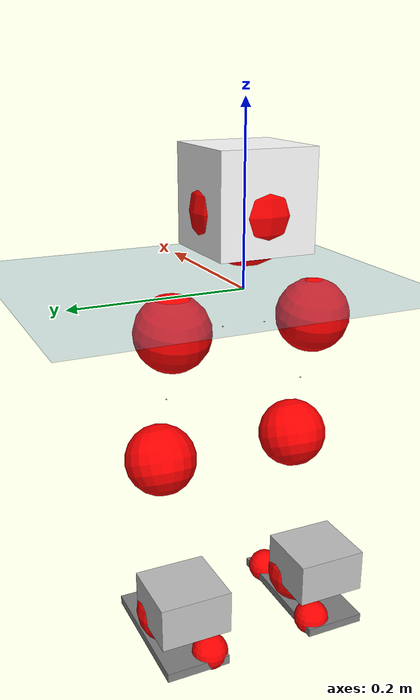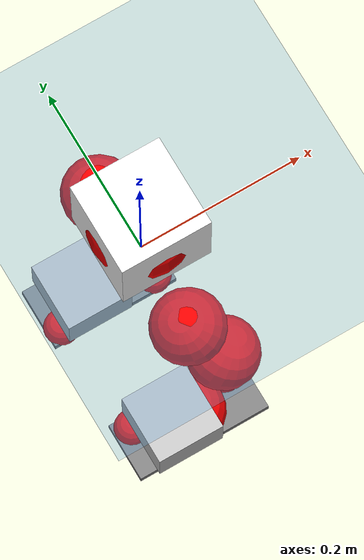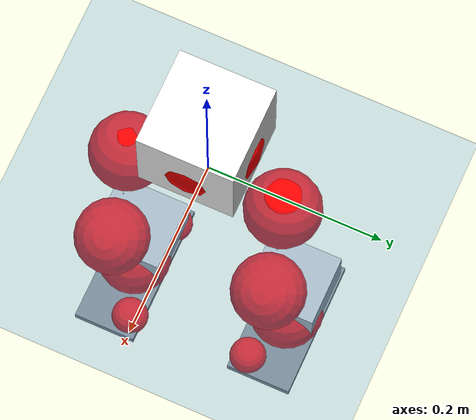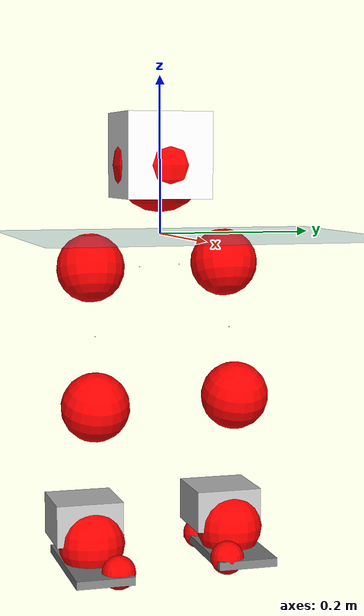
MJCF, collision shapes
<mujoco model="pi_12dof_release_v1">
  <compiler angle="radian" assetdir="assets" balanceinertia="true" inertiafromgeom="false"/>

  <option timestep="0.005" density="1.2" viscosity="2e-05"/>

  <size nkey="1"/>

  <visual>
    <quality shadowsize="8192"/>
    <map shadowclip="0.5"/>
  </visual>

  <default>
    <default class="/">
      <joint armature="0.01" damping="0.01" frictionloss="0.01"/>
      <geom contype="0" conaffinity="0" group="1" solref="-1000 -80"/>
      <site size="0.01 0.005 0.005" group="5"/>
      <general forcelimited="true" biastype="affine" gainprm="20" biasprm="0 -20 -0.5"/>
      <default class="foot">
        <geom size="0.0845 0.036 0.005" type="box" condim="6" group="4" priority="1" friction="0.9 0.2 0.2" solimp="0.015 1 0.005"/>
      </default>
      <default class="reward_collision_sphere">
        <geom group="5" rgba="1 0 0 1"/>
      </default>
    </default>
  </default>

  <asset>
    <texture type="skybox" colorspace="auto" name="//unnamed_texture_0" builtin="gradient" rgb1="0.95 0.95 0.95" rgb2="0.95 0.95 0.95" width="100" height="600"/>
    <texture type="2d" colorspace="auto" name="texplane" builtin="checker" rgb1="0.345 0.575 0.748" rgb2="0.345 0.575 0.748" markrgb="1 1 1" width="512" height="512"/>
    <material name="MatPlane" class="/" texture="texplane" texuniform="true" texrepeat="2 2" specular="0.9"/>
    <mesh name="baselink_1" class="/" file="baselink_1.STL"/>
    <mesh name="r_hip_pitch_link" class="/" file="r_hip_pitch_link.STL"/>
    <mesh name="r_hip_roll_link" class="/" file="r_hip_roll_link.STL"/>
    <mesh name="r_thigh_link" class="/" file="r_thigh_link.STL"/>
    <mesh name="r_calf_link" class="/" file="r_calf_link.STL"/>
    <mesh name="r_ankle_pitch_link" class="/" file="r_ankle_pitch_link.STL"/>
    <mesh name="r_ankle_roll_link" class="/" file="r_ankle_roll_link.STL"/>
    <mesh name="l_hip_pitch_link" class="/" file="l_hip_pitch_link.STL"/>
    <mesh name="l_hip_roll_link" class="/" file="l_hip_roll_link.STL"/>
    <mesh name="l_thigh_link" class="/" file="l_thigh_link.STL"/>
    <mesh name="l_calf_link" class="/" file="l_calf_link.STL"/>
    <mesh name="l_ankle_pitch_link" class="/" file="l_ankle_pitch_link.STL"/>
    <mesh name="l_ankle_roll_link" class="/" file="l_ankle_roll_link.STL"/>
  </asset>

  <worldbody>
    <geom name="floor" class="/" size="100 100 0.125" type="plane" group="0" material="MatPlane"/>
    <light name="toplight_shadow" class="/" pos="0 0 5" dir="0.0990148 0.0990148 -0.990148" type="directional" ambient="0.04 0.04 0.04" diffuse="0.55 0.55 0.55" specular="0.12 0.12 0.12"/>
    <light name="toplight_fill" class="/" pos="0 0 5" dir="0.0990148 0.0990148 -0.990148" type="directional" castshadow="false" ambient="0.04 0.04 0.04" diffuse="0.3 0.3 0.3" specular="0.08 0.08 0.08"/>
    <body name="trunk" pos="1.15051e-05 -0.000984615 -6.5574e-05" quat="1 7.76031e-05 -3.25857e-05 -4.03783e-05">
      <inertial pos="0.00495749 -0.000552592 0.0501831" quat="0.698541 0.0166425 0.0189379 0.715126" mass="2.79015" diaginertia="0.00658967 0.0138673 0.0123345"/>
      <joint name="//unnamed_joint_0" type="free"/>
      <geom name="//unnamed_geom_1" class="/" type="mesh" density="0" rgba="1 1 1 1" mesh="baselink_1"/>
      <geom name="//unnamed_geom_2" class="/" size="0.0544479 0.0544479 0.0544479" pos="0 0 0.0994194" type="box" rgba="1 1 1 1"/>
      <geom name="//unnamed_geom_3" class="reward_collision_sphere" size="0.0598927" pos="0 0 0.086992"/>
      <site name="imu" class="/" pos="0.00597053 0.0118107 -0.00497695" size="0.0108896"/>
      <camera name="track" class="/" pos="0 -2.1901 0" quat="0.707107 0.707107 0 0" mode="trackcom"/>
      <camera name="ego_camera" class="/" pos="0.0696812 0 0.223694" quat="-0.5 -0.5 0.5 0.5"/>
      <body name="r_hip_pitch_link" pos="0.00257918 -0.0276021 -0.042077" quat="0.99218 -0.000295355 -0.124811 -9.34149e-05">
        <inertial pos="0.000753021 -0.0608428 0.00251971" quat="-0.0192574 0.706551 -0.0289874 0.706806" mass="0.477099" diaginertia="7.52191e-05 0.000155036 0.000243423"/>
        <joint name="r_hip_pitch_joint" class="/" pos="0 0 0" axis="0.00888582 -0.999942 -0.00610326" range="-1.74727 1.20054" armature="0.0104104" damping="0.0165285" frictionloss="0.00972299"/>
        <geom name="//unnamed_geom_4" class="/" type="mesh" density="0" rgba="0.75294 0.75294 0.75294 1" mesh="r_hip_pitch_link"/>
        <geom name="//unnamed_geom_5" class="/" size="0.000544479 0.000544479 0.000544479" type="box" rgba="0.75294 0.75294 0.75294 1"/>
        <body name="r_hip_roll_link" pos="0.00162589 -0.0643145 -0.000748874" quat="1 -0.000645905 0.000343182 -0.000173422">
          <inertial pos="2.17017e-05 0.00247163 -0.0745113" quat="0.705863 -0.0791747 -0.0824819 0.699061" mass="0.502252" diaginertia="0.000229461 0.000436105 0.000365398"/>
          <joint name="r_hip_roll_joint" class="/" pos="0 0 0" axis="-0.999951 -0.00991515 -5.76918e-05" range="-0.104079 0.507523" armature="0.00981912" damping="0.035337" frictionloss="0.0111657"/>
          <geom name="//unnamed_geom_6" class="/" type="mesh" density="0" rgba="0.75294 0.75294 0.75294 1" mesh="r_hip_roll_link"/>
          <geom name="//unnamed_geom_7" class="/" size="0.000544479 0.000544479 0.000544479" type="box" rgba="0.75294 0.75294 0.75294 1"/>
          <geom name="//unnamed_geom_8" class="reward_collision_sphere" size="0.0435583"/>
          <body name="r_thigh_link" pos="-0.00195864 0.000862036 -0.0873307" quat="0.999999 4.63921e-05 0.00049069 -0.00110596">
            <inertial pos="0.00206467 0.00130808 -0.0572286" quat="0.737285 0.675581 0.000247495 -2.53752e-05" mass="0.144304" diaginertia="8.51653e-05 0.000146615 0.000174518"/>
            <joint name="r_thigh_joint" class="/" pos="0 0 0" axis="-0.00304913 0.0035535 -0.999989" range="-0.333613 0.602132" armature="0.00934852" damping="0.00308435" frictionloss="0.0105425"/>
            <geom name="//unnamed_geom_9" class="/" type="mesh" density="0" rgba="0.75294 0.75294 0.75294 1" mesh="r_thigh_link"/>
            <geom name="//unnamed_geom_10" class="/" size="0.000544479 0.000544479 0.000544479" type="box" rgba="0.75294 0.75294 0.75294 1"/>
            <body name="r_calf_link" pos="0.00242278 -0.00517661 -0.0892989" quat="0.947652 -0.000116591 0.319305 -3.01118e-07">
              <inertial pos="-0.00328187 0.00100773 -0.0847909" quat="0.99998 -0.000505083 0.000412146 0.00627134" mass="1.04939" diaginertia="0.00235555 0.00567044 0.000521152"/>
              <joint name="r_calf_joint" class="/" pos="0 0 0" axis="-0.0077912 -0.999942 -0.00744093" range="-1.69902 0.698304" armature="0.00971972" damping="0.0131455" frictionloss="0.0123073"/>
              <geom name="//unnamed_geom_11" class="/" type="mesh" density="0" rgba="0.75294 0.75294 0.75294 1" mesh="r_calf_link"/>
              <geom name="//unnamed_geom_12" class="/" size="0.000544479 0.000544479 0.000544479" type="box" rgba="0.75294 0.75294 0.75294 1"/>
              <geom name="//unnamed_geom_13" class="reward_collision_sphere" size="0.0435583"/>
              <body name="r_ankle_pitch_link" pos="-0.000637726 -0.00204854 -0.171333" quat="0.979869 -0.000544362 -0.199638 0.000549619">
                <inertial pos="0.0018567 0.00591051 2.60762e-05" quat="-0.00246611 0.713025 0.00309633 0.701128" mass="0.23279" diaginertia="0.000213489 0.000350254 0.000344933"/>
                <joint name="r_ankle_pitch_joint" class="/" pos="0 0 0" axis="-0.00507711 -0.999985 -0.00206108" stiffness="0.00226132" range="-1.24375 0.482085" armature="0.0105364" damping="0.0177185" frictionloss="0.00941795"/>
                <geom name="//unnamed_geom_14" class="/" type="mesh" density="0" rgba="0.75294 0.75294 0.75294 1" mesh="r_ankle_pitch_link"/>
                <geom name="//unnamed_geom_15" class="/" size="0.0424694 0.0435583 0.0272239" type="box" rgba="0.75294 0.75294 0.75294 1"/>
                <body name="r_ankle_roll_link" pos="0.0722569 0.00471744 -0.00150184" quat="1 1.12861e-05 -2.99963e-06 3.03381e-06">
                  <inertial pos="-0.0191159 -0.000449046 -0.0163548" quat="0.552954 0.42745 0.438051 0.565367" mass="0.66712" diaginertia="0.000800309 0.0016278 0.000864463"/>
                  <joint name="r_ankle_roll_joint" class="/" pos="0 0 0" axis="-0.999996 -0.000111055 -0.00298697" stiffness="0.00938809" range="-0.117633 0.138037" armature="0.0109638" damping="0" frictionloss="0.00949523"/>
                  <geom name="//unnamed_geom_16" class="/" type="mesh" density="0" rgba="0.75294 0.75294 0.75294 1" mesh="r_ankle_roll_link"/>
                  <geom name="//unnamed_geom_17" class="/" type="mesh" rgba="0.75294 0.75294 0.75294 1" mesh="r_ankle_roll_link"/>
                  <geom name="right_foot" class="foot" size="0.086663 0.0373888 0.00530901" pos="-0.0473832 0 -0.0546807"/>
                  <geom name="//unnamed_geom_19" class="reward_collision_sphere" size="0.0435583" pos="-0.0464541 0 -0.0248549"/>
                  <geom name="//unnamed_geom_20" class="reward_collision_sphere" size="0.0217792" pos="0.0139362 0.021901 -0.0497097"/>
                  <geom name="//unnamed_geom_21" class="reward_collision_sphere" size="0.0217792" pos="-0.11149 0.021901 -0.0497097"/>
                  <site name="right_foot" class="foot" pos="-0.0473832 0 -0.0546807" size="0.0108896"/>
                </body>
              </body>
            </body>
          </body>
        </body>
      </body>
      <body name="l_hip_pitch_link" pos="0.000387037 0.0255146 -0.0401168" quat="0.992317 -0.000825756 -0.123714 0.000432121">
        <inertial pos="4.94095e-05 0.0590294 0.0024077" quat="-0.0321288 0.712903 0.0271776 0.699999" mass="0.53633" diaginertia="9.23013e-05 0.000170858 0.000309748"/>
        <joint name="l_hip_pitch_joint" class="/" pos="0 0 0" axis="-0.000398896 1 0.00014692" range="-1.24517 1.7622" armature="0.0111816" damping="0.00744713" frictionloss="0.0118694"/>
        <geom name="//unnamed_geom_22" class="/" type="mesh" density="0" rgba="0.75294 0.75294 0.75294 1" mesh="l_hip_pitch_link"/>
        <geom name="//unnamed_geom_23" class="/" size="0.000544479 0.000544479 0.000544479" type="box" rgba="0.75294 0.75294 0.75294 1"/>
        <body name="l_hip_roll_link" pos="-0.00282508 0.0616005 0.00201953" quat="1 0.000527109 -9.26296e-05 0.000252414">
          <inertial pos="-0.00136081 -1.83407e-05 -0.074387" quat="0.702489 -0.076434 -0.0880066 0.702083" mass="0.503631" diaginertia="0.000231733 0.000467333 0.000394092"/>
          <joint name="l_hip_roll_joint" class="/" pos="0 0 0" axis="-0.999993 -0.00378534 0.000288703" range="-0.479888 0.116196" armature="0.0112068" damping="0.00854689" frictionloss="0.0123661"/>
          <geom name="//unnamed_geom_24" class="/" type="mesh" density="0" rgba="0.75294 0.75294 0.75294 1" mesh="l_hip_roll_link"/>
          <geom name="//unnamed_geom_25" class="/" size="0.000544479 0.000544479 0.000544479" type="box" rgba="0.75294 0.75294 0.75294 1"/>
          <geom name="//unnamed_geom_26" class="reward_collision_sphere" size="0.0435583"/>
          <body name="l_thigh_link" pos="-0.00292464 0.00210427 -0.0848736" quat="1 -0.000223709 0.000767714 -0.000245489">
            <inertial pos="0.000915671 -0.00160056 -0.0612363" quat="0.67306 0.739586 0.000563802 -0.00146595" mass="0.15355" diaginertia="8.8856e-05 0.000154457 0.000177352"/>
            <joint name="l_thigh_joint" class="/" pos="0 0 0" axis="-0.00129939 -0.000701327 -0.999999" stiffness="0.00122772" range="-0.585741 0.305608" armature="0.00978701" damping="0.00648716" frictionloss="0.0106307"/>
            <geom name="//unnamed_geom_27" class="/" type="mesh" density="0" rgba="0.75294 0.75294 0.75294 1" mesh="l_thigh_link"/>
            <geom name="//unnamed_geom_28" class="/" size="0.000544479 0.000544479 0.000544479" type="box" rgba="0.75294 0.75294 0.75294 1"/>
            <body name="l_calf_link" pos="0.000149366 0.000463876 -0.0893271" quat="0.947645 -4.92895e-05 0.319327 -1.43423e-05">
              <inertial pos="0.00278998 0.00425034 -0.088569" quat="0.99995 -0.00626356 -0.00501983 0.0059378" mass="1.07038" diaginertia="0.00254541 0.00586353 0.000527298"/>
              <joint name="l_calf_joint" class="/" pos="0 0 0" axis="-0.00212088 0.999929 -0.0117271" range="-0.610506 1.59874" armature="0.0122036" damping="0.0193707" frictionloss="0.0123429"/>
              <geom name="//unnamed_geom_29" class="/" type="mesh" density="0" rgba="0.75294 0.75294 0.75294 1" mesh="l_calf_link"/>
              <geom name="//unnamed_geom_30" class="/" size="0.000544479 0.000544479 0.000544479" type="box" rgba="0.75294 0.75294 0.75294 1"/>
              <geom name="//unnamed_geom_31" class="reward_collision_sphere" size="0.0435583"/>
              <body name="l_ankle_pitch_link" pos="0.000877787 0.00203109 -0.172748" quat="0.980089 0.000197693 -0.19856 -3.74157e-05">
                <inertial pos="0.00418129 -0.00061836 0.00237677" quat="0.00413394 0.711911 0.00203681 0.702255" mass="0.218698" diaginertia="0.000206666 0.000335559 0.000345884"/>
                <joint name="l_ankle_pitch_joint" class="/" pos="0 0 0" axis="0.00638127 0.999973 0.00356157" range="-0.521374 1.34372" armature="0.0109951" damping="0.0184043" frictionloss="0.0109662"/>
                <geom name="//unnamed_geom_32" class="/" type="mesh" density="0" rgba="0.75294 0.75294 0.75294 1" mesh="l_ankle_pitch_link"/>
                <geom name="//unnamed_geom_33" class="/" size="0.0424694 0.0435583 0.0272239" type="box" rgba="0.75294 0.75294 0.75294 1"/>
                <body name="l_ankle_roll_link" pos="0.0726695 0.00462522 0.00016123" quat="0.999999 0.000440922 0.00123307 0.000163612">
                  <inertial pos="-0.0245434 -0.000807941 -0.0206124" quat="0.569687 0.427457 0.42529 0.558449" mass="0.668038" diaginertia="0.00077019 0.00155969 0.000849869"/>
                  <joint name="l_ankle_roll_joint" class="/" pos="0 0 0" axis="-0.999953 -0.00838082 -0.00496914" range="-0.188261 0.128931" armature="0.0104134" damping="0.00371672" frictionloss="0.010796"/>
                  <geom name="//unnamed_geom_34" class="/" type="mesh" density="0" rgba="0.75294 0.75294 0.75294 1" mesh="l_ankle_roll_link"/>
                  <geom name="//unnamed_geom_35" class="/" type="mesh" rgba="0.75294 0.75294 0.75294 1" mesh="l_ankle_roll_link"/>
                  <geom name="left_foot" class="foot" size="0.0825796 0.0390416 0.00553658" pos="-0.0473832 0 -0.0546807"/>
                  <geom name="//unnamed_geom_37" class="reward_collision_sphere" size="0.0435583" pos="-0.0464541 0 -0.0248549"/>
                  <geom name="//unnamed_geom_38" class="reward_collision_sphere" size="0.0217792" pos="0.0139362 -0.021901 -0.0497097"/>
                  <geom name="//unnamed_geom_39" class="reward_collision_sphere" size="0.0217792" pos="-0.11149 -0.021901 -0.0497097"/>
                  <site name="left_foot" class="foot" pos="-0.0473832 0 -0.0546807" size="0.0108896"/>
                </body>
              </body>
            </body>
          </body>
        </body>
      </body>
    </body>
  </worldbody>

  <contact>
    <pair class="/" geom1="floor" geom2="right_foot" name="//unnamed_contact_1"/>
    <pair class="/" geom1="floor" geom2="left_foot" name="//unnamed_contact_0"/>
  </contact>

  <actuator>
    <general name="r_hip_pitch_joint" class="/" joint="r_hip_pitch_joint" forcerange="-20.983 20.983" gainprm="20.5904" biasprm="0 -20.5904 -0.51991"/>
    <general name="r_hip_roll_joint" class="/" joint="r_hip_roll_joint" forcerange="-23.2751 23.2751" gainprm="20.5904" biasprm="0 -20.5904 -0.51991"/>
    <general name="r_thigh_joint" class="/" joint="r_thigh_joint" forcerange="-24.4137 24.4137" gainprm="20.5904" biasprm="0 -20.5904 -0.51991"/>
    <general name="r_calf_joint" class="/" joint="r_calf_joint" forcerange="-23.0047 23.0047" gainprm="20.5904" biasprm="0 -20.5904 -0.51991"/>
    <general name="r_ankle_pitch_joint" class="/" joint="r_ankle_pitch_joint" forcerange="-22.0627 22.0627" gainprm="20.5904" biasprm="0 -20.5904 -0.51991"/>
    <general name="r_ankle_roll_joint" class="/" joint="r_ankle_roll_joint" forcerange="-22.0175 22.0175" gainprm="20.5904" biasprm="0 -20.5904 -0.51991"/>
    <general name="l_hip_pitch_joint" class="/" joint="l_hip_pitch_joint" forcerange="-20.8617 20.8617" gainprm="20.5904" biasprm="0 -20.5904 -0.51991"/>
    <general name="l_hip_roll_joint" class="/" joint="l_hip_roll_joint" forcerange="-21.3738 21.3738" gainprm="20.5904" biasprm="0 -20.5904 -0.51991"/>
    <general name="l_thigh_joint" class="/" joint="l_thigh_joint" forcerange="-20.6621 20.6621" gainprm="20.5904" biasprm="0 -20.5904 -0.51991"/>
    <general name="l_calf_joint" class="/" joint="l_calf_joint" forcerange="-22.0206 22.0206" gainprm="20.5904" biasprm="0 -20.5904 -0.51991"/>
    <general name="l_ankle_pitch_joint" class="/" joint="l_ankle_pitch_joint" forcerange="-22.0099 22.0099" gainprm="20.5904" biasprm="0 -20.5904 -0.51991"/>
    <general name="l_ankle_roll_joint" class="/" joint="l_ankle_roll_joint" forcerange="-24.4654 24.4654" gainprm="20.5904" biasprm="0 -20.5904 -0.51991"/>
  </actuator>

  <sensor>
    <gyro site="imu" name="imu_angular_velocity"/>
    <velocimeter site="imu" name="imu_linear_velocity"/>
    <framelinvel objtype="site" objname="left_foot" name="left_foot_global_linear_velocity"/>
    <framelinvel objtype="site" objname="right_foot" name="right_foot_global_linear_velocity"/>
  </sensor>

  <keyframe>
    <key name="home" qpos="0 0 0.291 1 0 0 0 0.4 0 0 -0.8 0.4 0 -0.4 0 0 0.8 -0.4 0"/>
  </keyframe>
</mujoco>
